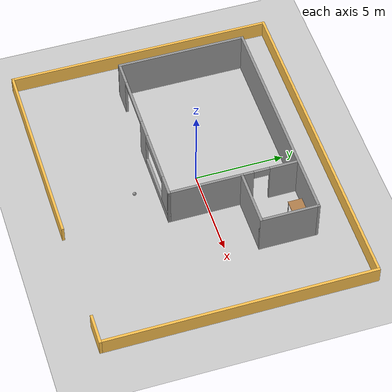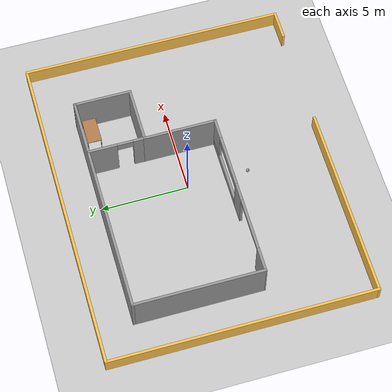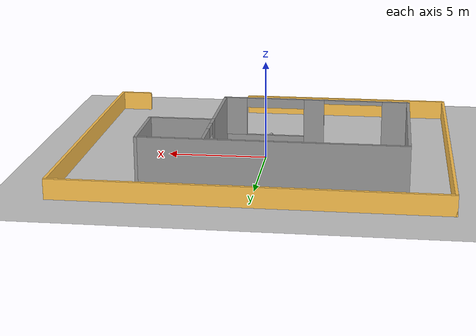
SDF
<sdf version="1.6">
 <world name="default">
  <plugin name="welcome" filename="libwelcome.so"/>
  <light name="sun" type="directional">
   <pose>0 0 10 0 -0 0</pose>
   <diffuse>0.8 0.8 0.8 1</diffuse>
   <specular>0.2 0.2 0.2 1</specular>
   <attenuation>
    <range>1000</range>
    <constant>0.9</constant>
    <linear>0.01</linear>
    <quadratic>0.001</quadratic>
   </attenuation>
   <direction>-0.5 0.1 -0.9</direction>
  </light>
  <model name="ground_plane">
   <static>1</static>
   <link name="link">
    <collision name="collision">
     <geometry><plane><normal>0 0 1</normal><size>100 100</size></plane></geometry>
     <surface>
      <contact><collide_bitmask>65535</collide_bitmask></contact>
      <friction><ode><mu>100</mu><mu2>50</mu2></ode></friction>
     </surface>
    </collision>
    <visual name="visual">
     <cast_shadows>0</cast_shadows>
     <geometry><plane><normal>0 0 1</normal><size>100 100</size></plane></geometry>
     <material>
      <script><uri>file://media/materials/scripts/gazebo.material</uri><name>Gazebo/Grey</name></script>
     </material>
    </visual>
   </link>
  </model>
  <gravity>0 0 -9.8</gravity>
  <magnetic_field>6e-06 2.3e-05 -4.2e-05</magnetic_field>
  <atmosphere type="adiabatic"/>
  <physics name="default_physics" default="0" type="ode">
   <max_step_size>0.001</max_step_size>
   <real_time_factor>1</real_time_factor>
   <real_time_update_rate>1000</real_time_update_rate>
  </physics>
  <scene><ambient>0.4 0.4 0.4 1</ambient><background>0.7 0.7 0.7 1</background><shadows>1</shadows></scene>
  <spherical_coordinates>
   <surface_model>EARTH_WGS84</surface_model>
   <latitude_deg>0</latitude_deg>
   <longitude_deg>0</longitude_deg>
   <elevation>0</elevation>
   <heading_deg>0</heading_deg>
  </spherical_coordinates>
  <model name="building_0">
   <pose>0.079 -0.505 0 0 -0 0</pose>
   <link name="Wall_10">
    <collision name="Wall_10_Collision">
     <geometry><box><size>3.35 0.15 2.5</size></box></geometry>
     <pose>0 0 1.25 0 -0 0</pose>
    </collision>
    <visual name="Wall_10_Visual">
     <pose>0 0 1.25 0 -0 0</pose>
     <geometry><box><size>3.35 0.15 2.5</size></box></geometry>
     <material>
      <script><uri>file://media/materials/scripts/gazebo.material</uri><name>Gazebo/Grey</name></script>
      <ambient>1 1 1 1</ambient>
     </material>
     <meta><layer>0</layer></meta>
    </visual>
    <pose>5.489 3.905 0 0 -0 1.5708</pose>
   </link>
   <link name="Wall_11">
    <collision name="Wall_11_Collision">
     <geometry><box><size>12.85 0.15 2.5</size></box></geometry>
     <pose>0 0 1.25 0 -0 0</pose>
    </collision>
    <visual name="Wall_11_Visual">
     <pose>0 0 1.25 0 -0 0</pose>
     <geometry><box><size>12.85 0.15 2.5</size></box></geometry>
     <material>
      <script><uri>file://media/materials/scripts/gazebo.material</uri><name>Gazebo/Grey</name></script>
      <ambient>1 1 1 1</ambient>
     </material>
     <meta><layer>0</layer></meta>
    </visual>
    <pose>-0.861 5.505 0 0 -0 3.14159</pose>
   </link>
   <link name="Wall_13">
    <pose>2.321 3.884 0 0 -0 1.5708</pose>
    <visual name="Wall_13_Visual_0">
     <pose>-1.28726 0 1.25 0 -0 0</pose>
     <geometry><box><size>0.733951 0.15 2.5</size></box></geometry>
     <material>
      <script><uri>file://media/materials/scripts/gazebo.material</uri><name>Gazebo/Grey</name></script>
      <ambient>1 1 1 1</ambient>
     </material>
     <meta><layer>0</layer></meta>
    </visual>
    <collision name="Wall_13_Collision_0">
     <geometry><box><size>0.733951 0.15 2.5</size></box></geometry>
     <pose>-1.28726 0 1.25 0 -0 0</pose>
    </collision>
    <visual name="Wall_13_Visual_1">
     <pose>0.816975 0 1.25 0 -0 0</pose>
     <geometry><box><size>1.67452 0.15 2.5</size></box></geometry>
     <material>
      <script><uri>file://media/materials/scripts/gazebo.material</uri><name>Gazebo/Grey</name></script>
      <ambient>1 1 1 1</ambient>
     </material>
     <meta><layer>0</layer></meta>
    </visual>
    <collision name="Wall_13_Collision_1">
     <geometry><box><size>1.67452 0.15 2.5</size></box></geometry>
     <pose>0.816975 0 1.25 0 -0 0</pose>
    </collision>
    <visual name="Wall_13_Visual_2">
     <pose>-0.470286 0 2.25 0 -0 0</pose>
     <geometry><box><size>0.9 0.15 0.5</size></box></geometry>
     <material>
      <script><uri>file://media/materials/scripts/gazebo.material</uri><name>Gazebo/Grey</name></script>
      <ambient>1 1 1 1</ambient>
     </material>
     <meta><layer>0</layer></meta>
    </visual>
    <collision name="Wall_13_Collision_2">
     <geometry><box><size>0.9 0.15 0.5</size></box></geometry>
     <pose>-0.470286 0 2.25 0 -0 0</pose>
    </collision>
   </link>
   <link name="Wall_16">
    <collision name="Wall_16_Collision">
     <geometry><box><size>18.75 0.15 1</size></box></geometry>
     <pose>0 0 0.5 0 -0 0</pose>
    </collision>
    <visual name="Wall_16_Visual">
     <pose>0 0 0.5 0 -0 0</pose>
     <geometry><box><size>18.75 0.15 1</size></box></geometry>
     <material>
      <script><uri>file://media/materials/scripts/gazebo.material</uri><name>Gazebo/Grey</name></script>
      <ambient>1 0.764706 0.305882 1</ambient>
     </material>
     <meta><layer>0</layer></meta>
    </visual>
    <pose>0 7.55 0 0 -0 0</pose>
   </link>
   <link name="Wall_17">
    <collision name="Wall_17_Collision">
     <geometry><box><size>15.25 0.15 1</size></box></geometry>
     <pose>0 0 0.5 0 -0 0</pose>
    </collision>
    <visual name="Wall_17_Visual">
     <pose>0 0 0.5 0 -0 0</pose>
     <geometry><box><size>15.25 0.15 1</size></box></geometry>
     <material>
      <script><uri>file://media/materials/scripts/gazebo.material</uri><name>Gazebo/Grey</name></script>
      <ambient>1 0.764706 0.305882 1</ambient>
     </material>
     <meta><layer>0</layer></meta>
    </visual>
    <pose>9.3 0 0 0 0 -1.5708</pose>
   </link>
   <link name="Wall_19">
    <collision name="Wall_19_Collision">
     <geometry><box><size>15.25 0.15 1</size></box></geometry>
     <pose>0 0 0.5 0 -0 0</pose>
    </collision>
    <visual name="Wall_19_Visual">
     <pose>0 0 0.5 0 -0 0</pose>
     <geometry><box><size>15.25 0.15 1</size></box></geometry>
     <material>
      <script><uri>file://media/materials/scripts/gazebo.material</uri><name>Gazebo/Grey</name></script>
      <ambient>1 0.764706 0.305882 1</ambient>
     </material>
     <meta><layer>0</layer></meta>
    </visual>
    <pose>-9.3 0 0 0 -0 1.5708</pose>
   </link>
   <link name="Wall_21">
    <collision name="Wall_21_Collision">
     <geometry><box><size>11.25 0.15 1</size></box></geometry>
     <pose>0 0 0.5 0 -0 0</pose>
    </collision>
    <visual name="Wall_21_Visual">
     <pose>0 0 0.5 0 -0 0</pose>
     <geometry><box><size>11.25 0.15 1</size></box></geometry>
     <material>
      <script><uri>file://media/materials/scripts/gazebo.material</uri><name>Gazebo/Grey</name></script>
      <ambient>1 0.764706 0.305882 1</ambient>
     </material>
     <meta><layer>0</layer></meta>
    </visual>
    <pose>-3.75 -7.55 0 0 -0 0</pose>
   </link>
   <link name="Wall_23">
    <collision name="Wall_23_Collision">
     <geometry><box><size>1.75 0.15 1</size></box></geometry>
     <pose>0 0 0.5 0 -0 0</pose>
    </collision>
    <visual name="Wall_23_Visual">
     <pose>0 0 0.5 0 -0 0</pose>
     <geometry><box><size>1.75 0.15 1</size></box></geometry>
     <material>
      <script><uri>file://media/materials/scripts/gazebo.material</uri><name>Gazebo/Grey</name></script>
      <ambient>1 0.764706 0.305882 1</ambient>
     </material>
     <meta><layer>0</layer></meta>
    </visual>
    <pose>8.5 -7.55 0 0 -0 3.14159</pose>
   </link>
   <link name="Wall_6">
    <collision name="Wall_6_Collision">
     <geometry><box><size>7.41574 0.15 2.5</size></box></geometry>
     <pose>0 0 1.25 0 -0 0</pose>
    </collision>
    <visual name="Wall_6_Visual">
     <pose>0 0 1.25 0 -0 0</pose>
     <geometry><box><size>7.41574 0.15 2.5</size></box></geometry>
     <material>
      <script><uri>file://media/materials/scripts/gazebo.material</uri><name>Gazebo/Grey</name></script>
      <ambient>1 1 1 1</ambient>
     </material>
     <meta><layer>0</layer></meta>
    </visual>
    <pose>-7.21096 1.87213 0 0 0 -1.57079</pose>
   </link>
   <link name="Wall_7">
    <pose>-2.44496 -1.76737 0 0 0 -0.001391</pose>
    <visual name="Wall_7_Visual_0">
     <pose>-4.13426 0 1.25 0 -0 0</pose>
     <geometry><box><size>1.41341 0.15 2.5</size></box></geometry>
     <material>
      <script><uri>file://media/materials/scripts/gazebo.material</uri><name>Gazebo/Grey</name></script>
      <ambient>1 1 1 1</ambient>
     </material>
     <meta><layer>0</layer></meta>
    </visual>
    <collision name="Wall_7_Collision_0">
     <geometry><box><size>1.41341 0.15 2.5</size></box></geometry>
     <pose>-4.13426 0 1.25 0 -0 0</pose>
    </collision>
    <visual name="Wall_7_Visual_1">
     <pose>0.09879 0 1.25 0 -0 0</pose>
     <geometry><box><size>1.05268 0.15 2.5</size></box></geometry>
     <material>
      <script><uri>file://media/materials/scripts/gazebo.material</uri><name>Gazebo/Grey</name></script>
      <ambient>1 1 1 1</ambient>
     </material>
     <meta><layer>0</layer></meta>
    </visual>
    <collision name="Wall_7_Collision_1">
     <geometry><box><size>1.05268 0.15 2.5</size></box></geometry>
     <pose>0.09879 0 1.25 0 -0 0</pose>
    </collision>
    <visual name="Wall_7_Visual_2">
     <pose>2.73305 0 0.25 0 -0 0</pose>
     <geometry><box><size>4.21584 0.15 0.5</size></box></geometry>
     <material>
      <script><uri>file://media/materials/scripts/gazebo.material</uri><name>Gazebo/Grey</name></script>
      <ambient>1 1 1 1</ambient>
     </material>
     <meta><layer>0</layer></meta>
    </visual>
    <collision name="Wall_7_Collision_2">
     <geometry><box><size>4.21584 0.15 0.5</size></box></geometry>
     <pose>2.73305 0 0.25 0 -0 0</pose>
    </collision>
    <visual name="Wall_7_Visual_3">
     <pose>4.23305 0 1.5 0 -0 0</pose>
     <geometry><box><size>1.21583 0.15 2</size></box></geometry>
     <material>
      <script><uri>file://media/materials/scripts/gazebo.material</uri><name>Gazebo/Grey</name></script>
      <ambient>1 1 1 1</ambient>
     </material>
     <meta><layer>0</layer></meta>
    </visual>
    <collision name="Wall_7_Collision_3">
     <geometry><box><size>1.21583 0.15 2</size></box></geometry>
     <pose>4.23305 0 1.5 0 -0 0</pose>
    </collision>
    <visual name="Wall_7_Visual_4">
     <pose>2.12513 0 2.25 0 -0 0</pose>
     <geometry><box><size>3 0.15 0.5</size></box></geometry>
     <material>
      <script><uri>file://media/materials/scripts/gazebo.material</uri><name>Gazebo/Grey</name></script>
      <ambient>1 1 1 1</ambient>
     </material>
     <meta><layer>0</layer></meta>
    </visual>
    <collision name="Wall_7_Collision_4">
     <geometry><box><size>3 0.15 0.5</size></box></geometry>
     <pose>2.12513 0 2.25 0 -0 0</pose>
    </collision>
    <visual name="Wall_7_Visual_5">
     <pose>-1.92755 0 2.4 0 -0 0</pose>
     <geometry><box><size>3 0.15 0.2</size></box></geometry>
     <material>
      <script><uri>file://media/materials/scripts/gazebo.material</uri><name>Gazebo/Grey</name></script>
      <ambient>1 1 1 1</ambient>
     </material>
     <meta><layer>0</layer></meta>
    </visual>
    <collision name="Wall_7_Collision_5">
     <geometry><box><size>3 0.15 0.2</size></box></geometry>
     <pose>-1.92755 0 2.4 0 -0 0</pose>
    </collision>
   </link>
   <link name="Wall_8">
    <collision name="Wall_8_Collision">
     <geometry><box><size>4.22905 0.15 2.5</size></box></geometry>
     <pose>0 0 1.25 0 -0 0</pose>
    </collision>
    <visual name="Wall_8_Visual">
     <pose>0 0 1.25 0 -0 0</pose>
     <geometry><box><size>4.22905 0.15 2.5</size></box></geometry>
     <material>
      <script><uri>file://media/materials/scripts/gazebo.material</uri><name>Gazebo/Grey</name></script>
      <ambient>1 1 1 1</ambient>
     </material>
     <meta><layer>0</layer></meta>
    </visual>
    <pose>2.321 0.2655 0 0 -0 1.5708</pose>
   </link>
   <link name="Wall_9">
    <collision name="Wall_9_Collision">
     <geometry><box><size>3.318 0.15 2.5</size></box></geometry>
     <pose>0 0 1.25 0 -0 0</pose>
    </collision>
    <visual name="Wall_9_Visual">
     <pose>0 0 1.25 0 -0 0</pose>
     <geometry><box><size>3.318 0.15 2.5</size></box></geometry>
     <material>
      <script><uri>file://media/materials/scripts/gazebo.material</uri><name>Gazebo/Grey</name></script>
      <ambient>1 1 1 1</ambient>
     </material>
     <meta><layer>0</layer></meta>
    </visual>
    <pose>3.905 2.305 0 0 -0 0</pose>
   </link>
   <static>1</static>
  </model>
  <model name="table">
   <static>1</static>
   <link name="link">
    <collision name="surface">
     <pose>0 0 1 0 -0 0</pose>
     <geometry><box><size>1.5 0.8 0.03</size></box></geometry>
     <surface><friction><ode><mu>0.6</mu><mu2>0.6</mu2></ode></friction></surface>
    </collision>
    <visual name="visual1">
     <pose>0 0 1 0 -0 0</pose>
     <geometry><box><size>1.5 0.8 0.03</size></box></geometry>
     <material>
      <script><uri>file://media/materials/scripts/gazebo.material</uri><name>Gazebo/Wood</name></script>
     </material>
    </visual>
    <collision name="front_left_leg">
     <pose>0.68 0.38 0.5 0 -0 0</pose>
     <geometry><cylinder><radius>0.02</radius><length>1</length></cylinder></geometry>
    </collision>
    <visual name="front_left_leg">
     <pose>0.68 0.38 0.5 0 -0 0</pose>
     <geometry><cylinder><radius>0.02</radius><length>1</length></cylinder></geometry>
     <material>
      <script><uri>file://media/materials/scripts/gazebo.material</uri><name>Gazebo/Grey</name></script>
     </material>
    </visual>
    <collision name="front_right_leg">
     <pose>0.68 -0.38 0.5 0 -0 0</pose>
     <geometry><cylinder><radius>0.02</radius><length>1</length></cylinder></geometry>
    </collision>
    <visual name="front_right_leg">
     <pose>0.68 -0.38 0.5 0 -0 0</pose>
     <geometry><cylinder><radius>0.02</radius><length>1</length></cylinder></geometry>
     <material>
      <script><uri>file://media/materials/scripts/gazebo.material</uri><name>Gazebo/Grey</name></script>
     </material>
    </visual>
    <collision name="back_right_leg">
     <pose>-0.68 -0.38 0.5 0 -0 0</pose>
     <geometry><cylinder><radius>0.02</radius><length>1</length></cylinder></geometry>
    </collision>
    <visual name="back_right_leg">
     <pose>-0.68 -0.38 0.5 0 -0 0</pose>
     <geometry><cylinder><radius>0.02</radius><length>1</length></cylinder></geometry>
     <material>
      <script><uri>file://media/materials/scripts/gazebo.material</uri><name>Gazebo/Grey</name></script>
     </material>
    </visual>
    <collision name="back_left_leg">
     <pose>-0.68 0.38 0.5 0 -0 0</pose>
     <geometry><cylinder><radius>0.02</radius><length>1</length></cylinder></geometry>
    </collision>
    <visual name="back_left_leg">
     <pose>-0.68 0.38 0.5 0 -0 0</pose>
     <geometry><cylinder><radius>0.02</radius><length>1</length></cylinder></geometry>
     <material>
      <script><uri>file://media/materials/scripts/gazebo.material</uri><name>Gazebo/Grey</name></script>
     </material>
    </visual>
   </link>
   <pose>4.53922 4.37489 0 0 -0 0</pose>
  </model>
  <model name="my_ball">
   <link name="link_0">
    <inertial>
     <mass>1</mass>
     <inertia><ixx>0.1</ixx><ixy>0</ixy><ixz>0</ixz><iyy>0.1</iyy><iyz>0</iyz><izz>0.1</izz></inertia>
    </inertial>
    <visual name="visual">
     <geometry><sphere><radius>0.1</radius></sphere></geometry>
     <material>
      <lighting>1</lighting>
      <script><uri>file://media/materials/scripts/gazebo.material</uri><name>Gazebo/Grey</name></script>
      <shader type="pixel"><normal_map>__default__</normal_map></shader>
      <ambient>1 1 1 1</ambient>
      <diffuse>1 1 1 1</diffuse>
      <specular>1 1 1 1</specular>
      <emissive>1 1 1 1</emissive>
     </material>
    </visual>
    <collision name="collision">
     <geometry><sphere><radius>0.1</radius></sphere></geometry>
     <surface>
      <friction>
       <ode><mu>1</mu><mu2>1</mu2><fdir1>0 0 0</fdir1><slip1>0</slip1><slip2>0</slip2></ode>
       <torsional>
        <coefficient>1</coefficient>
        <patch_radius>0</patch_radius>
        <surface_radius>0</surface_radius>
        <use_patch_radius>1</use_patch_radius>
        <ode><slip>0</slip></ode>
       </torsional>
      </friction>
      <bounce><restitution_coefficient>0</restitution_coefficient><threshold>1e+06</threshold></bounce>
      <contact>
       <collide_without_contact>0</collide_without_contact>
       <collide_without_contact_bitmask>1</collide_without_contact_bitmask>
       <collide_bitmask>1</collide_bitmask>
       <ode>
        <soft_cfm>0</soft_cfm>
        <soft_erp>0.2</soft_erp>
        <kp>1e+13</kp>
        <kd>1</kd>
        <max_vel>0.01</max_vel>
        <min_depth>0</min_depth>
       </ode>
       <bullet>
        <split_impulse>1</split_impulse>
        <split_impulse_penetration_threshold>-0.01</split_impulse_penetration_threshold>
        <soft_cfm>0</soft_cfm>
        <soft_erp>0.2</soft_erp>
        <kp>1e+13</kp>
        <kd>1</kd>
       </bullet>
      </contact>
     </surface>
    </collision>
   </link>
   <static>0</static>
   <pose>0.116827 -3.56375 0.1 0 -0 0</pose>
  </model>
 </world>
</sdf>
